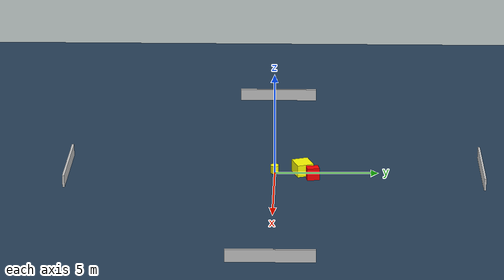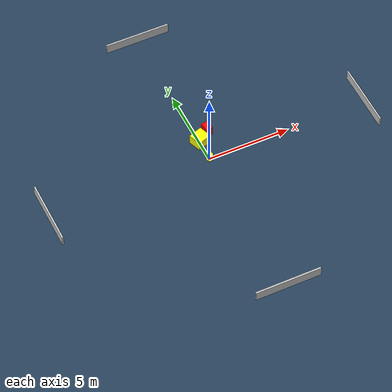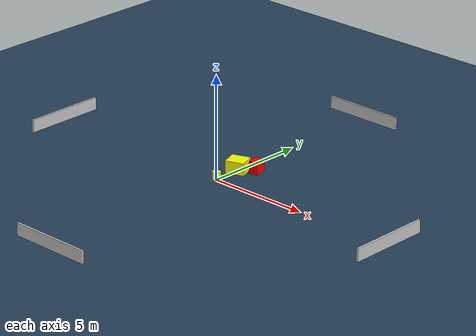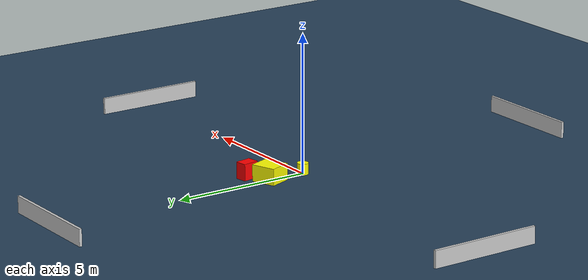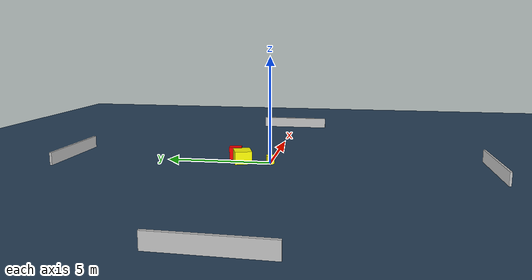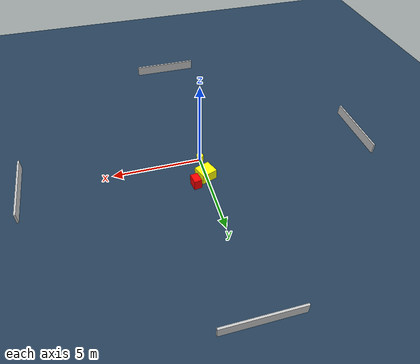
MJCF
<?xml version="1.0" ?>
<mujoco model="generated_environment">
  <option timestep="0.01" integrator="RK4" cone="elliptic"/>
  <default>
    <geom density="1"/>
  </default>
  <asset>
    <texture builtin="gradient" height="3072" name="skybox" rgb1="0.3 0.5 0.7" rgb2="0 0 0" type="skybox" width="512"/>
    <texture builtin="checker" height="300" name="groundplane" rgb1="0.2 0.3 0.4" rgb2="0.1 0.2 0.3" type="2d" width="300"/>
    <material name="groundplane" reflectance="0.2" texrepeat="5 5" texture="groundplane"/>
  </asset>
  <worldbody>
    <light dir="0 0 -1" directional="true" pos="0 0 1.5"/>
    <geom condim="3" friction="0.5 0.005 0.001" material="groundplane" name="floor" pos="0 0 0" size="0 0 0.05" type="plane"/>
    <body name="walls">
      <geom name="wall_1" condim="4" pos="-10.0 0.0 0.3" rgba="0.800000011920929 0.800000011920929 0.800000011920929 1.0" size="0.05 2.0 0.3" type="box"/>
      <geom name="wall_2" condim="4" pos="10.0 0.0 0.3" rgba="0.800000011920929 0.800000011920929 0.800000011920929 1.0" size="0.05 2.0 0.3" type="box"/>
      <geom name="wall_3" condim="4" pos="0.0 -10.0 0.3" rgba="0.800000011920929 0.800000011920929 0.800000011920929 1.0" size="2.0 0.05 0.3" type="box"/>
      <geom name="wall_4" condim="4" pos="0.0 10.0 0.3" rgba="0.800000011920929 0.800000011920929 0.800000011920929 1.0" size="2.0 0.05 0.3" type="box"/>
    </body>
    <body name="robot">
      <joint name="joint_x" type="slide" pos="0 0 0" axis="1 0 0"/>
      <joint name="joint_y" type="slide" pos="0 0 0" axis="0 1 0"/>
      <geom name="robot" type="cylinder" pos="0.0 0.0 0.2" size="0.2 0.2 0.0" mass="5.0" friction="1.0 0.005 0.0001" condim="4" rgba="1.0 1.0 0.0 1.0"/>
    </body>
    <body name="obstacle_1_movable">
      <geom name="obstacle_1_movable" condim="4" pos="0.03568141848865812 1.3479070155588269 0.3" euler="0 0 199.90109426509244" friction="0.0 0.005 0.001" rgba="1.0 1.0 0.0 1.0" size="0.4458055828841474 0.4060340251553505 0.3" type="box" mass="0.1"/>
      <joint type="free"/>
    </body>
    <body name="obstacle_2_static">
      <geom name="obstacle_2_static" condim="4" pos="0.7116002693498363 1.8372269721089385 0.3" euler="0 0 99.3479709736693" friction="0.0 0.005 0.001" rgba="1.0 0.0 0.0 1.0" size="0.29492774768632224 0.21073322181899248 0.3" type="box"/>
    </body>
  </worldbody>
  <actuator>
    <motor name="actuator_x" joint="joint_x" gear="1" ctrlrange="-1 1"/>
    <motor name="actuator_y" joint="joint_y" gear="1" ctrlrange="-1 1"/>
  </actuator>
</mujoco>
